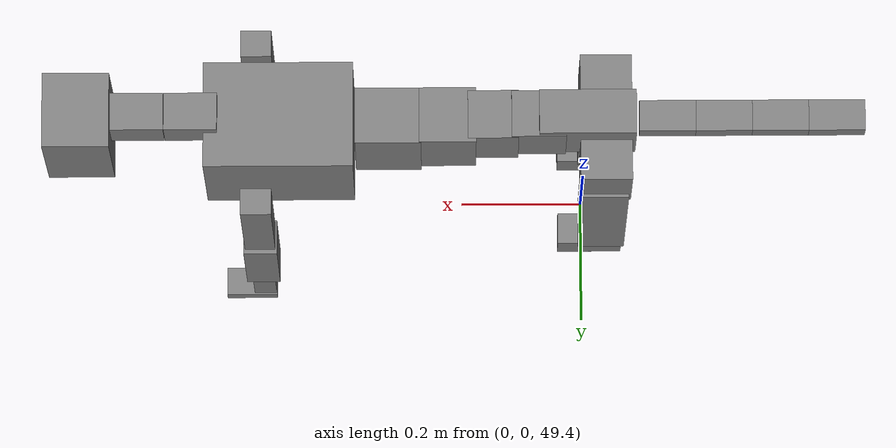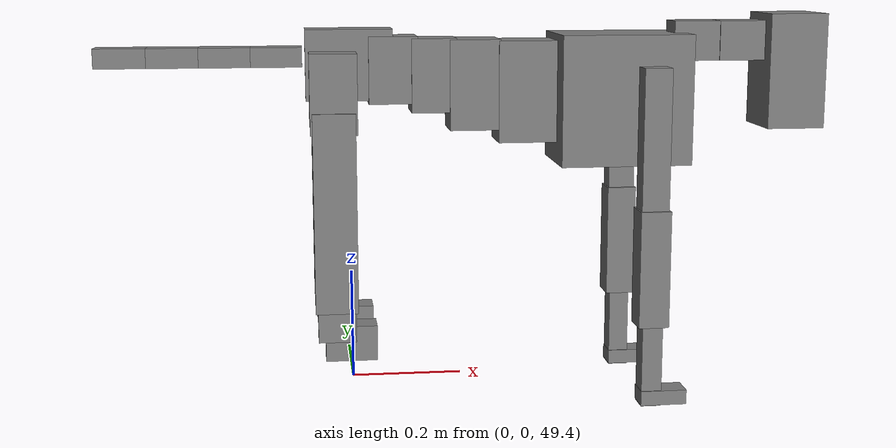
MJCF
<mujoco model="dog">

    <default>
        <joint armature="0.02" stiffness="1" damping="0.2" limited="true"/>
        <geom condim="3" friction="1 0.05 0.05" margin="0.01"/>
        <motor ctrllimited="true" ctrlrange="-1.0 1.0" forcelimited="true" gear="50"/>
    </default>

    <compiler inertiafromgeom="true" angle="radian"/>

    <option timestep="0.016" iterations="50" tolerance="1e-10" solver="Newton" jacobian="dense" cone="pyramidal"/>

    <size nconmax="20000" njmax="60000" nstack="5000000"/>
    <visual>
        <map force="0.1" zfar="30"/>
        <rgba haze="0.15 0.25 0.35 1"/>
        <quality shadowsize="2048"/>
        <global offwidth="800" offheight="800"/>
    </visual>

    <asset>
        <texture type="skybox" builtin="gradient" rgb1="0.3 0.5 0.7" rgb2="0 0 0" width="512" height="512"/>
        <texture name="texplane" type="2d" builtin="checker" rgb1=".2 .3 .4" rgb2=".1 0.15 0.2" width="512" height="512"
                 mark="cross" markrgb=".8 .8 .8"/>
        <texture name="texgeom" type="cube" builtin="flat" mark="cross" width="127" height="1278" rgb1="0.8 0.6 0.4"
                 rgb2="0.8 0.6 0.4" markrgb="1 1 1" random="0.01"/>

        <material name="matplane" reflectance="0.3" texture="texplane" texrepeat="1 1" texuniform="true"/>
        <material name="matgeom" texture="texgeom" texuniform="true" rgba="0.8 0.6 .4 1"/>
    </asset>

    <worldbody>
        <geom name="floor" pos="0 0 0" size="0 0 .25" type="plane" material="matplane" condim="3"/>

        <light directional="false" diffuse=".2 .2 .2" specular="0 0 0" pos="0 0 5" dir="0 0 -1" castshadow="false"/>
        <light mode="targetbodycom" target="torso" directional="false" diffuse=".8 .8 .8" specular="0.3 0.3 0.3"
               pos="0 0 4.0" dir="0 0 -1"/>

        <body name="root" pos="0 0 50">
            <freejoint name="root_1"/>
            <geom type="box" pos="0 0 -0.02" size="0.0774  0.0358  0.063" density="2030"/>

            <body name="spine1" pos="0.054 0 0">
                <joint name="spine1_y" axis="0 1 0" range="0 0.7" limited="true"/>
                <geom type="box" pos="0.02375 0 -0.03" size="0.04375  0.0375  0.05985" density="2030"/>

                <body name="spine2" pos="0.0612 0 0">
                    <joint name="spine2_y" axis="0 1 0" range="-0.15 0.15" limited="true"/>
                    <geom type="box" pos="0.03555  0  -0.04" size="0.04055  0.039  0.06615" density="2030"/>

                    <body name="spine3" pos="0.0730 0 0">
                        <joint name="spine3_y" axis="0 1 0" range="-0.15 0.15" limited="true"/>
                        <geom type="box" pos="0.03555  0  -0.057" size="0.04555  0.0445  0.081" density="2030"/>

                        <body name="spine4" pos="0.0780 0 0">
                            <joint name="spine4_y" axis="0 1 0" range="-0.15 0.15" limited="true"/>
                            <geom type="box" pos="0.05265  0  -0.07" size="0.05265  0.045  0.09135" density="2030"/>

                            <body name="torso" pos="0.1082 0 0">
                                <joint name="torso_y" axis="0 1 0" range="-0.15 0.15" limited="true"/>
                                <geom type="box" pos="0.11925  0  -0.085" size="0.11925  0.085  0.11745"
                                      density="2030"/>

                                <body name="neck1" pos="0.2160  0   0.0180">
                                    <joint name="neck1_y" axis="0 1 0" range="-1.2  -1" limited="true"/>
                                    <geom type="box" pos="0.0423  0  0" size="0.0423  0.03  0.036" density="2325"/>

                                    <body name="neck2" pos="0.0853  0  0">
                                        <joint name="neck2_y" axis="0 1 0" range="0.1  0" limited="true"/>
                                        <geom type="box" pos="0.0423  0  0" size="0.0423  0.03  0.036" density="2325"/>

                                        <body name="head" pos="0.0853  0  0">
                                            <joint name="head_y" axis="0 1 0" range="-0.3  -0.2" limited="true"/>
                                            <geom type="box" pos="0.0531  0  -0.055" size="0.0531  0.06  0.1044"
                                                  density="4030"/>

                                        </body>
                                    </body>
                                </body>

                                <body name="front_shoulder" pos="0.156  0   -0.0480">
                                    <joint name="front_shoulder_y" axis="0 1 0" range="-1 1.5" limited="true"/>
                                    <geom type="box" pos="0 0.13 -0.1125" size="0.0246  0.0211  0.1392" density="1158"/>
                                    <geom type="box" pos="0 -0.13 -0.1125" size="0.0246  0.0211  0.1392"
                                          density="1158"/>

                                    <body name="front_elbow" pos="0  0  -0.2250">
                                        <joint name="front_elbow_y" axis="0 1 0" range="-2 0" limited="true"/>
                                        <geom type="box" pos="0 0.13 -0.1053" size="0.0273  0.0279  0.1053"
                                              density="1081"/>
                                        <geom type="box" pos="0 -0.13 -0.1053" size="0.0273  0.0279  0.1053"
                                              density="1081"/>

                                        <body name="front_wrist" pos="0  0  -0.2105">
                                            <joint name="front_wrist_y" axis="0 1 0" range="-0.2 0" limited="true"/>
                                            <geom type="box" pos="0 0.13 -0.0671" size="0.0184  0.0204  0.0802"
                                                  density="1664"/>
                                            <geom type="box" pos="0 -0.13 -0.0671" size="0.0184  0.0204  0.0802"
                                                  density="1664"/>

                                            <body name="front_finger_end" pos="0  0  -0.1341">
                                                <joint name="front_finger_y" axis="0 1 0" range="-0.4 1"
                                                       limited="true"/>
                                                <geom type="box" pos="0.0228  0.13  0.0018"
                                                      size="0.0419  0.0228  0.0132" density="1515"/>
                                                <geom type="box" pos="0.0228  -0.13  0.0018"
                                                      size="0.0419  0.0228  0.0132" density="1515"/>

                                            </body>

                                        </body>
                                    </body>
                                </body>

                            </body>
                        </body>
                    </body>
                </body>
            </body>

            <body name="back_hip" pos="-0.03 0 -0.018">
                <joint name="back_hip_y" axis="0 1 0" range="-1.5 0.3" limited="true"/>
                <geom type="box" pos="0 0.07 -0.0478" size="0.0412  0.0323  0.0706" density="1154"/>
                <geom type="box" pos="0 -0.07 -0.0478" size="0.0412  0.0323  0.0706" density="1154"/>

                <body name="back_knee" pos="0  0  -0.0956">
                    <joint name="back_knee_y" axis="0 1 0" range="0 2.8" limited="true"/>
                    <geom type="box" pos="0 0.07 -0.1619" size="0.0377  0.0372  0.1775" density="1227"/>
                    <geom type="box" pos="0 -0.07 -0.1619" size="0.0377  0.0372  0.1775" density="1227"/>

                    <body name="back_ankle" pos="0  0  -0.3239">
                        <joint name="back_ankle_y" axis="0 1 0" range="-2.2 0" limited="true"/>
                        <geom type="box" pos="0 0.07 -0.0285" size="0.0334  0.0334  0.0397" density="1284"/>
                        <geom type="box" pos="0 -0.07 -0.0285" size="0.0334  0.0334  0.0397" density="1284"/>

                        <body name="back_toe_end" pos="0  0  -0.0569">
                            <joint name="back_toe_y" axis="0 1 0" range="-0.4 1" limited="true"/>
                            <geom type="box" pos="0.0250  0.07  -0.0166" size="0.0458  0.0250  0.0316" density="1515"/>
                            <geom type="box" pos="0.0250  -0.07  -0.0166" size="0.0458  0.0250  0.0316" density="1515"/>

                        </body>
                    </body>
                </body>
            </body>

            <body name="tail1" pos="-0.074 0 -0.006">
                <joint name="tail1_y" axis="0 1 0" range="-0.2 0.2" limited="true"/>
                <geom type="box" pos="-0.0536  0  0" size="0.045  0.025  0.0175" density="1587"/>

                <body name="tail2" pos="-0.09 0 0">
                    <joint name="tail2_y" axis="0 1 0" range="-0.2 0.2" limited="true"/>
                    <geom type="box" pos="-0.0536  0  0" size="0.045  0.025  0.0175" density="1587"/>

                    <body name="tail3" pos="-0.09 0 0">
                        <joint name="tail3_y" axis="0 1 0" range="-0.2 0.2" limited="true"/>
                        <geom type="box" pos="-0.0536  0  0" size="0.045  0.025  0.0175" density="1587"/>

                        <body name="tail4" pos="-0.09 0 0">
                            <joint name="tail4_y" axis="0 1 0" range="-0.2 0.2" limited="true"/>
                            <geom type="box" pos="-0.0536  0  0" size="0.045  0.025  0.0175" density="1587"/>

                        </body>
                    </body>
                </body>
            </body>
        </body>
    </worldbody>

    <actuator>
        <motor joint="spine1_y" forcerange="-150 150     "/>
        <motor joint="spine2_y" forcerange="-150 150     "/>
        <motor joint="spine3_y" forcerange="-150 150     "/>
        <motor joint="spine4_y" forcerange="-150 150     "/>
        <motor joint="torso_y" forcerange="-150 150     "/>
        <motor joint="neck1_y" forcerange="-100 100       "/>
        <motor joint="neck2_y" forcerange="-100 100       "/>
        <motor joint="head_y" forcerange="-150 150       "/>
        <motor joint="front_shoulder_y" forcerange="-131.94 108.44"/>
        <motor joint="front_elbow_y" forcerange="-111.46 191.27"/>
        <motor joint="front_wrist_y" forcerange="-80.79 82.35"/>
        <motor joint="front_finger_y" forcerange="-21.69 60.05"/>
        <motor joint="back_hip_y" forcerange="-268.55 362.75"/>
        <motor joint="back_knee_y" forcerange="-352.32 388.58"/>
        <motor joint="back_angle_y" forcerange="-247.02 187.87"/>
        <motor joint="back_toe_y" forcerange="-25.10 94.86"/>
        <motor joint="tail1_y" forcerange="-50 50     "/>
        <motor joint="tail2_y" forcerange="-50 50     "/>
        <motor joint="tail3_y" forcerange="-50 50     "/>
        <motor joint="tail4_y" forcerange="-50 50     "/>
    </actuator>
</mujoco>
